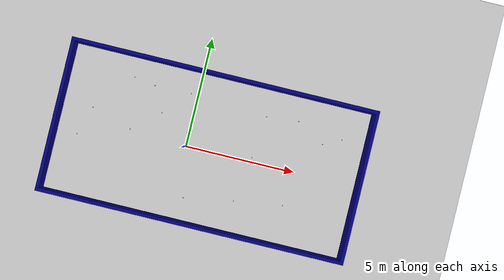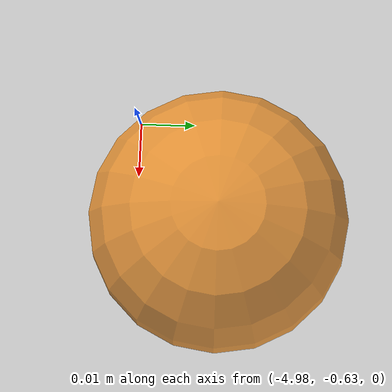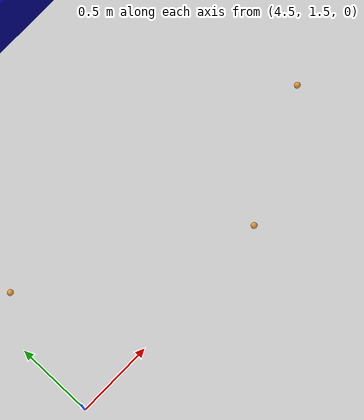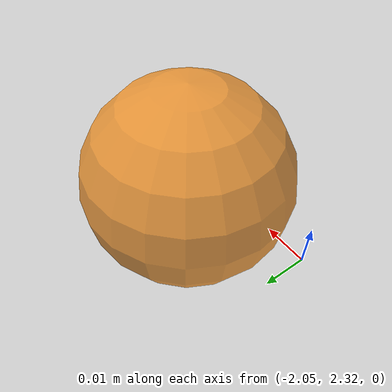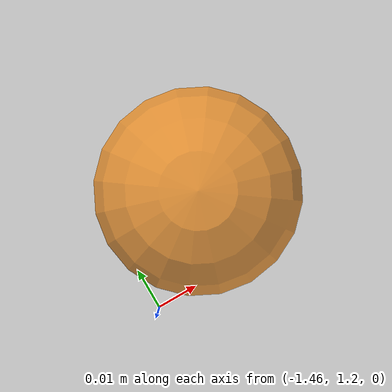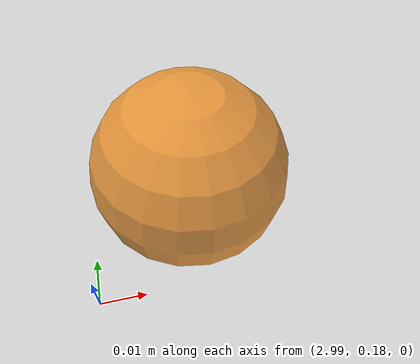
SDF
<sdf version="1.6">
 <world name="default">
  <model name="ground_plane">
   <static>1</static>
   <link name="link">
    <collision name="collision">
     <geometry><plane><normal>0 0 1</normal><size>100 100</size></plane></geometry>
     <surface><friction><ode><mu>100</mu><mu2>10</mu2></ode></friction></surface>
    </collision>
    <visual name="visual">
     <cast_shadows>0</cast_shadows>
     <geometry><plane><normal>0 0 1</normal><size>100 100</size></plane></geometry>
     <material>
      <script><uri>file://media/materials/scripts/gazebo.material</uri><name>Gazebo/Grey</name></script>
     </material>
    </visual>
   </link>
  </model>
  <gravity>0 0 -9.8</gravity>
  <magnetic_field>6e-06 2.3e-05 -4.2e-05</magnetic_field>
  <atmosphere type="adiabatic"/>
  <physics name="default_physics" default="0" type="ode">
   <max_step_size>0.001</max_step_size>
   <real_time_factor>1</real_time_factor>
   <real_time_update_rate>1000</real_time_update_rate>
  </physics>
  <scene><ambient>0.4 0.4 0.4 1</ambient><background>0.7 0.7 0.7 1</background><shadows>1</shadows></scene>
  <spherical_coordinates>
   <surface_model>EARTH_WGS84</surface_model>
   <latitude_deg>0</latitude_deg>
   <longitude_deg>0</longitude_deg>
   <elevation>0</elevation>
   <heading_deg>0</heading_deg>
  </spherical_coordinates>
  <model name="table_tennis_room_2">
   <pose>0.979802 0.03249 0 0 -0 0</pose>
   <link name="Wall_3">
    <collision name="Wall_3_Collision">
     <geometry><box><size>14 0.15 0.76</size></box></geometry>
     <pose>0 0 0.38 0 -0 0</pose>
    </collision>
    <visual name="Wall_3_Visual">
     <pose>0 0 0.38 0 -0 0</pose>
     <geometry><box><size>14 0.15 0.76</size></box></geometry>
     <material>
      <script><uri>file://media/materials/scripts/gazebo.material</uri><name>Gazebo/Grey</name></script>
      <ambient>0 0 0.498039 1</ambient>
     </material>
    </visual>
    <pose>0 -3.425 0 0 -0 0</pose>
   </link>
   <link name="Wall_4">
    <collision name="Wall_4_Collision">
     <geometry><box><size>7 0.15 0.76</size></box></geometry>
     <pose>0 0 0.38 0 -0 0</pose>
    </collision>
    <visual name="Wall_4_Visual">
     <pose>0 0 0.38 0 -0 0</pose>
     <geometry><box><size>7 0.15 0.76</size></box></geometry>
     <material>
      <script><uri>file://media/materials/scripts/gazebo.material</uri><name>Gazebo/Grey</name></script>
      <ambient>0 0 0.498039 1</ambient>
     </material>
    </visual>
    <pose>6.925 0 0 0 -0 1.5708</pose>
   </link>
   <link name="Wall_5">
    <collision name="Wall_5_Collision">
     <geometry><box><size>14 0.15 0.76</size></box></geometry>
     <pose>0 0 0.38 0 -0 0</pose>
    </collision>
    <visual name="Wall_5_Visual">
     <pose>0 0 0.38 0 -0 0</pose>
     <geometry><box><size>14 0.15 0.76</size></box></geometry>
     <material>
      <script><uri>file://media/materials/scripts/gazebo.material</uri><name>Gazebo/Grey</name></script>
      <ambient>0 0 0.498039 1</ambient>
     </material>
    </visual>
    <pose>0 3.425 0 0 -0 3.14159</pose>
   </link>
   <link name="Wall_6">
    <collision name="Wall_6_Collision">
     <geometry><box><size>7 0.15 0.76</size></box></geometry>
     <pose>0 0 0.38 0 -0 0</pose>
    </collision>
    <visual name="Wall_6_Visual">
     <pose>0 0 0.38 0 -0 0</pose>
     <geometry><box><size>7 0.15 0.76</size></box></geometry>
     <material>
      <script><uri>file://media/materials/scripts/gazebo.material</uri><name>Gazebo/Grey</name></script>
      <ambient>0 0 0.498039 1</ambient>
     </material>
    </visual>
    <pose>-6.925 0 0 0 0 -1.5708</pose>
   </link>
   <static>1</static>
  </model>
  <light name="main_light" type="directional">
   <pose>2.51103 2.03204 1 0 -0 0</pose>
   <diffuse>0.5 0.5 0.5 1</diffuse>
   <specular>0.1 0.1 0.1 1</specular>
   <direction>0.1 0.1 -0.9</direction>
   <attenuation>
    <range>20</range>
    <constant>0.5</constant>
    <linear>0.01</linear>
    <quadratic>0.001</quadratic>
   </attenuation>
  </light>
  <light name="sidelight_1" type="directional">
   <pose>2.54945 1.74337 1 0 -0 0</pose>
   <diffuse>0.5 0.5 0.5 1</diffuse>
   <specular>0.1 0.1 0.1 1</specular>
   <direction>0.1 0.1 -0.9</direction>
   <attenuation>
    <range>20</range>
    <constant>0.5</constant>
    <linear>0.01</linear>
    <quadratic>0.001</quadratic>
   </attenuation>
  </light>
  <light name="sidelight_2" type="directional">
   <pose>2.76871 0.675081 1 0 -0 0</pose>
   <diffuse>0.5 0.5 0.5 1</diffuse>
   <specular>0.1 0.1 0.1 1</specular>
   <direction>0.1 0.1 -0.9</direction>
   <attenuation>
    <range>20</range>
    <constant>0.5</constant>
    <linear>0.01</linear>
    <quadratic>0.001</quadratic>
   </attenuation>
  </light>
  <light name="sidelight_3" type="directional">
   <pose>2.93471 1.34637 1 0 -0 0</pose>
   <diffuse>0.5 0.5 0.5 1</diffuse>
   <specular>0.1 0.1 0.1 1</specular>
   <direction>0.1 0.1 -0.9</direction>
   <attenuation>
    <range>20</range>
    <constant>0.5</constant>
    <linear>0.01</linear>
    <quadratic>0.001</quadratic>
   </attenuation>
  </light>
  <light name="sidelight_4" type="directional">
   <pose>3.40089 1.34551 1 0 -0 0</pose>
   <diffuse>0.5 0.5 0.5 1</diffuse>
   <specular>0.1 0.1 0.1 1</specular>
   <direction>0.1 0.1 -0.9</direction>
   <attenuation>
    <range>20</range>
    <constant>0.5</constant>
    <linear>0.01</linear>
    <quadratic>0.001</quadratic>
   </attenuation>
  </light>
  <model name="table_tennis_28">
   <link name="link">
    <pose>0 0 0.02 0 -0 0</pose>
    <inertial>
     <mass>0.0027</mass>
     <inertia><ixx>0.00027</ixx><ixy>0</ixy><ixz>0</ixz><iyy>0.00027</iyy><iyz>0</iyz><izz>0.00027</izz></inertia>
    </inertial>
    <visual name="visual">
     <geometry><sphere><radius>0.02</radius></sphere></geometry>
     <material>
      <script><name>Gazebo/Orange</name><uri>file://media/materials/scripts/gazebo.material</uri></script>
      <ambient>1 0.44 0 1</ambient>
      <diffuse>1 0.44 0 1</diffuse>
      <specular>0 0 0 1</specular>
      <emissive>0 0 0 1</emissive>
      <shader type="vertex"><normal_map>__default__</normal_map></shader>
     </material>
     <cast_shadows>0</cast_shadows>
     <transparency>0.22</transparency>
    </visual>
    <collision name="collision">
     <geometry><sphere><radius>0.02</radius></sphere></geometry>
     <surface>
      <friction>
       <ode><mu>1</mu><mu2>1</mu2><fdir1>0 0 0</fdir1><slip1>0</slip1><slip2>0</slip2></ode>
       <torsional>
        <coefficient>1</coefficient>
        <patch_radius>0</patch_radius>
        <surface_radius>0</surface_radius>
        <use_patch_radius>1</use_patch_radius>
        <ode><slip>0</slip></ode>
       </torsional>
      </friction>
      <bounce><restitution_coefficient>0</restitution_coefficient><threshold>1e+06</threshold></bounce>
      <contact>
       <collide_without_contact>0</collide_without_contact>
       <collide_without_contact_bitmask>1</collide_without_contact_bitmask>
       <collide_bitmask>1</collide_bitmask>
       <ode>
        <soft_cfm>0</soft_cfm>
        <soft_erp>0.2</soft_erp>
        <kp>1e+13</kp>
        <kd>1</kd>
        <max_vel>0.01</max_vel>
        <min_depth>0</min_depth>
       </ode>
       <bullet>
        <split_impulse>1</split_impulse>
        <split_impulse_penetration_threshold>-0.01</split_impulse_penetration_threshold>
        <soft_cfm>0</soft_cfm>
        <soft_erp>0.2</soft_erp>
        <kp>1e+13</kp>
        <kd>1</kd>
       </bullet>
      </contact>
     </surface>
    </collision>
   </link>
   <static>0</static>
   <pose>5.98062 1.54014 4e-06 0.018571 -0.007017 -0.002142</pose>
  </model>
  <model name="table_tennis_32">
   <link name="link">
    <pose>0 0 0.02 0 -0 0</pose>
    <inertial>
     <mass>0.0027</mass>
     <inertia><ixx>0.00027</ixx><ixy>0</ixy><ixz>0</ixz><iyy>0.00027</iyy><iyz>0</iyz><izz>0.00027</izz></inertia>
    </inertial>
    <visual name="visual">
     <geometry><sphere><radius>0.02</radius></sphere></geometry>
     <material>
      <script><name>Gazebo/Orange</name><uri>file://media/materials/scripts/gazebo.material</uri></script>
      <ambient>1 0.44 0 1</ambient>
      <diffuse>1 0.44 0 1</diffuse>
      <specular>0 0 0 1</specular>
      <emissive>0 0 0 1</emissive>
      <shader type="vertex"><normal_map>__default__</normal_map></shader>
     </material>
     <cast_shadows>0</cast_shadows>
     <transparency>0.22</transparency>
    </visual>
    <collision name="collision">
     <geometry><sphere><radius>0.02</radius></sphere></geometry>
     <surface>
      <friction>
       <ode><mu>1</mu><mu2>1</mu2><fdir1>0 0 0</fdir1><slip1>0</slip1><slip2>0</slip2></ode>
       <torsional>
        <coefficient>1</coefficient>
        <patch_radius>0</patch_radius>
        <surface_radius>0</surface_radius>
        <use_patch_radius>1</use_patch_radius>
        <ode><slip>0</slip></ode>
       </torsional>
      </friction>
      <bounce><restitution_coefficient>0</restitution_coefficient><threshold>1e+06</threshold></bounce>
      <contact>
       <collide_without_contact>0</collide_without_contact>
       <collide_without_contact_bitmask>1</collide_without_contact_bitmask>
       <collide_bitmask>1</collide_bitmask>
       <ode>
        <soft_cfm>0</soft_cfm>
        <soft_erp>0.2</soft_erp>
        <kp>1e+13</kp>
        <kd>1</kd>
        <max_vel>0.01</max_vel>
        <min_depth>0</min_depth>
       </ode>
       <bullet>
        <split_impulse>1</split_impulse>
        <split_impulse_penetration_threshold>-0.01</split_impulse_penetration_threshold>
        <soft_cfm>0</soft_cfm>
        <soft_erp>0.2</soft_erp>
        <kp>1e+13</kp>
        <kd>1</kd>
       </bullet>
      </contact>
     </surface>
    </collision>
   </link>
   <static>0</static>
   <pose>4.86946 -1.58779 0 0 -0 0</pose>
  </model>
  <model name="table_tennis_35">
   <link name="link">
    <pose>0 0 0.02 0 -0 0</pose>
    <inertial>
     <mass>0.0027</mass>
     <inertia><ixx>0.00027</ixx><ixy>0</ixy><ixz>0</ixz><iyy>0.00027</iyy><iyz>0</iyz><izz>0.00027</izz></inertia>
    </inertial>
    <visual name="visual">
     <geometry><sphere><radius>0.02</radius></sphere></geometry>
     <material>
      <script><name>Gazebo/Orange</name><uri>file://media/materials/scripts/gazebo.material</uri></script>
      <ambient>1 0.44 0 1</ambient>
      <diffuse>1 0.44 0 1</diffuse>
      <specular>0 0 0 1</specular>
      <emissive>0 0 0 1</emissive>
      <shader type="vertex"><normal_map>__default__</normal_map></shader>
     </material>
     <cast_shadows>0</cast_shadows>
     <transparency>0.22</transparency>
    </visual>
    <collision name="collision">
     <geometry><sphere><radius>0.02</radius></sphere></geometry>
     <surface>
      <friction>
       <ode><mu>1</mu><mu2>1</mu2><fdir1>0 0 0</fdir1><slip1>0</slip1><slip2>0</slip2></ode>
       <torsional>
        <coefficient>1</coefficient>
        <patch_radius>0</patch_radius>
        <surface_radius>0</surface_radius>
        <use_patch_radius>1</use_patch_radius>
        <ode><slip>0</slip></ode>
       </torsional>
      </friction>
      <bounce><restitution_coefficient>0</restitution_coefficient><threshold>1e+06</threshold></bounce>
      <contact>
       <collide_without_contact>0</collide_without_contact>
       <collide_without_contact_bitmask>1</collide_without_contact_bitmask>
       <collide_bitmask>1</collide_bitmask>
       <ode>
        <soft_cfm>0</soft_cfm>
        <soft_erp>0.2</soft_erp>
        <kp>1e+13</kp>
        <kd>1</kd>
        <max_vel>0.01</max_vel>
        <min_depth>0</min_depth>
       </ode>
       <bullet>
        <split_impulse>1</split_impulse>
        <split_impulse_penetration_threshold>-0.01</split_impulse_penetration_threshold>
        <soft_cfm>0</soft_cfm>
        <soft_erp>0.2</soft_erp>
        <kp>1e+13</kp>
        <kd>1</kd>
       </bullet>
      </contact>
     </surface>
    </collision>
   </link>
   <static>0</static>
   <pose>-0.108036 0.630376 0 0 -0 0</pose>
  </model>
  <model name="table_tennis_36">
   <link name="link">
    <pose>0 0 0.02 0 -0 0</pose>
    <inertial>
     <mass>0.0027</mass>
     <inertia><ixx>0.00027</ixx><ixy>0</ixy><ixz>0</ixz><iyy>0.00027</iyy><iyz>0</iyz><izz>0.00027</izz></inertia>
    </inertial>
    <visual name="visual">
     <geometry><sphere><radius>0.02</radius></sphere></geometry>
     <material>
      <script><name>Gazebo/Orange</name><uri>file://media/materials/scripts/gazebo.material</uri></script>
      <ambient>1 0.44 0 1</ambient>
      <diffuse>1 0.44 0 1</diffuse>
      <specular>0 0 0 1</specular>
      <emissive>0 0 0 1</emissive>
      <shader type="vertex"><normal_map>__default__</normal_map></shader>
     </material>
     <cast_shadows>0</cast_shadows>
     <transparency>0.22</transparency>
    </visual>
    <collision name="collision">
     <geometry><sphere><radius>0.02</radius></sphere></geometry>
     <surface>
      <friction>
       <ode><mu>1</mu><mu2>1</mu2><fdir1>0 0 0</fdir1><slip1>0</slip1><slip2>0</slip2></ode>
       <torsional>
        <coefficient>1</coefficient>
        <patch_radius>0</patch_radius>
        <surface_radius>0</surface_radius>
        <use_patch_radius>1</use_patch_radius>
        <ode><slip>0</slip></ode>
       </torsional>
      </friction>
      <bounce><restitution_coefficient>0</restitution_coefficient><threshold>1e+06</threshold></bounce>
      <contact>
       <collide_without_contact>0</collide_without_contact>
       <collide_without_contact_bitmask>1</collide_without_contact_bitmask>
       <collide_bitmask>1</collide_bitmask>
       <ode>
        <soft_cfm>0</soft_cfm>
        <soft_erp>0.2</soft_erp>
        <kp>1e+13</kp>
        <kd>1</kd>
        <max_vel>0.01</max_vel>
        <min_depth>0</min_depth>
       </ode>
       <bullet>
        <split_impulse>1</split_impulse>
        <split_impulse_penetration_threshold>-0.01</split_impulse_penetration_threshold>
        <soft_cfm>0</soft_cfm>
        <soft_erp>0.2</soft_erp>
        <kp>1e+13</kp>
        <kd>1</kd>
       </bullet>
      </contact>
     </surface>
    </collision>
   </link>
   <static>0</static>
   <pose>-1.43818 1.21902 0 0 -0 0</pose>
  </model>
  <model name="table_tennis_38">
   <link name="link">
    <pose>0 0 0.02 0 -0 0</pose>
    <inertial>
     <mass>0.0027</mass>
     <inertia><ixx>0.00027</ixx><ixy>0</ixy><ixz>0</ixz><iyy>0.00027</iyy><iyz>0</iyz><izz>0.00027</izz></inertia>
    </inertial>
    <visual name="visual">
     <geometry><sphere><radius>0.02</radius></sphere></geometry>
     <material>
      <script><name>Gazebo/Orange</name><uri>file://media/materials/scripts/gazebo.material</uri></script>
      <ambient>1 0.44 0 1</ambient>
      <diffuse>1 0.44 0 1</diffuse>
      <specular>0 0 0 1</specular>
      <emissive>0 0 0 1</emissive>
      <shader type="vertex"><normal_map>__default__</normal_map></shader>
     </material>
     <cast_shadows>0</cast_shadows>
     <transparency>0.22</transparency>
    </visual>
    <collision name="collision">
     <geometry><sphere><radius>0.02</radius></sphere></geometry>
     <surface>
      <friction>
       <ode><mu>1</mu><mu2>1</mu2><fdir1>0 0 0</fdir1><slip1>0</slip1><slip2>0</slip2></ode>
       <torsional>
        <coefficient>1</coefficient>
        <patch_radius>0</patch_radius>
        <surface_radius>0</surface_radius>
        <use_patch_radius>1</use_patch_radius>
        <ode><slip>0</slip></ode>
       </torsional>
      </friction>
      <bounce><restitution_coefficient>0</restitution_coefficient><threshold>1e+06</threshold></bounce>
      <contact>
       <collide_without_contact>0</collide_without_contact>
       <collide_without_contact_bitmask>1</collide_without_contact_bitmask>
       <collide_bitmask>1</collide_bitmask>
       <ode>
        <soft_cfm>0</soft_cfm>
        <soft_erp>0.2</soft_erp>
        <kp>1e+13</kp>
        <kd>1</kd>
        <max_vel>0.01</max_vel>
        <min_depth>0</min_depth>
       </ode>
       <bullet>
        <split_impulse>1</split_impulse>
        <split_impulse_penetration_threshold>-0.01</split_impulse_penetration_threshold>
        <soft_cfm>0</soft_cfm>
        <soft_erp>0.2</soft_erp>
        <kp>1e+13</kp>
        <kd>1</kd>
       </bullet>
      </contact>
     </surface>
    </collision>
   </link>
   <static>0</static>
   <pose>3.21857 2.15483 0 0 -0 0</pose>
  </model>
  <model name="table_tennis_40">
   <link name="link">
    <pose>0 0 0.02 0 -0 0</pose>
    <inertial>
     <mass>0.0027</mass>
     <inertia><ixx>0.00027</ixx><ixy>0</ixy><ixz>0</ixz><iyy>0.00027</iyy><iyz>0</iyz><izz>0.00027</izz></inertia>
    </inertial>
    <visual name="visual">
     <geometry><sphere><radius>0.02</radius></sphere></geometry>
     <material>
      <script><name>Gazebo/Orange</name><uri>file://media/materials/scripts/gazebo.material</uri></script>
      <ambient>1 0.44 0 1</ambient>
      <diffuse>1 0.44 0 1</diffuse>
      <specular>0 0 0 1</specular>
      <emissive>0 0 0 1</emissive>
      <shader type="vertex"><normal_map>__default__</normal_map></shader>
     </material>
     <cast_shadows>0</cast_shadows>
     <transparency>0.22</transparency>
    </visual>
    <collision name="collision">
     <geometry><sphere><radius>0.02</radius></sphere></geometry>
     <surface>
      <friction>
       <ode><mu>1</mu><mu2>1</mu2><fdir1>0 0 0</fdir1><slip1>0</slip1><slip2>0</slip2></ode>
       <torsional>
        <coefficient>1</coefficient>
        <patch_radius>0</patch_radius>
        <surface_radius>0</surface_radius>
        <use_patch_radius>1</use_patch_radius>
        <ode><slip>0</slip></ode>
       </torsional>
      </friction>
      <bounce><restitution_coefficient>0</restitution_coefficient><threshold>1e+06</threshold></bounce>
      <contact>
       <collide_without_contact>0</collide_without_contact>
       <collide_without_contact_bitmask>1</collide_without_contact_bitmask>
       <collide_bitmask>1</collide_bitmask>
       <ode>
        <soft_cfm>0</soft_cfm>
        <soft_erp>0.2</soft_erp>
        <kp>1e+13</kp>
        <kd>1</kd>
        <max_vel>0.01</max_vel>
        <min_depth>0</min_depth>
       </ode>
       <bullet>
        <split_impulse>1</split_impulse>
        <split_impulse_penetration_threshold>-0.01</split_impulse_penetration_threshold>
        <soft_cfm>0</soft_cfm>
        <soft_erp>0.2</soft_erp>
        <kp>1e+13</kp>
        <kd>1</kd>
       </bullet>
      </contact>
     </surface>
    </collision>
   </link>
   <static>0</static>
   <pose>-0.342388 2.36522 0 0 -0 0</pose>
  </model>
  <model name="table_tennis_46">
   <link name="link">
    <pose>0 0 0.02 0 -0 0</pose>
    <inertial>
     <mass>0.0027</mass>
     <inertia><ixx>0.00027</ixx><ixy>0</ixy><ixz>0</ixz><iyy>0.00027</iyy><iyz>0</iyz><izz>0.00027</izz></inertia>
    </inertial>
    <visual name="visual">
     <geometry><sphere><radius>0.02</radius></sphere></geometry>
     <material>
      <script><name>Gazebo/Orange</name><uri>file://media/materials/scripts/gazebo.material</uri></script>
      <ambient>1 0.44 0 1</ambient>
      <diffuse>1 0.44 0 1</diffuse>
      <specular>0 0 0 1</specular>
      <emissive>0 0 0 1</emissive>
      <shader type="vertex"><normal_map>__default__</normal_map></shader>
     </material>
     <cast_shadows>0</cast_shadows>
     <transparency>0.22</transparency>
    </visual>
    <collision name="collision">
     <geometry><sphere><radius>0.02</radius></sphere></geometry>
     <surface>
      <friction>
       <ode><mu>1</mu><mu2>1</mu2><fdir1>0 0 0</fdir1><slip1>0</slip1><slip2>0</slip2></ode>
       <torsional>
        <coefficient>1</coefficient>
        <patch_radius>0</patch_radius>
        <surface_radius>0</surface_radius>
        <use_patch_radius>1</use_patch_radius>
        <ode><slip>0</slip></ode>
       </torsional>
      </friction>
      <bounce><restitution_coefficient>0</restitution_coefficient><threshold>1e+06</threshold></bounce>
      <contact>
       <collide_without_contact>0</collide_without_contact>
       <collide_without_contact_bitmask>1</collide_without_contact_bitmask>
       <collide_bitmask>1</collide_bitmask>
       <ode>
        <soft_cfm>0</soft_cfm>
        <soft_erp>0.2</soft_erp>
        <kp>1e+13</kp>
        <kd>1</kd>
        <max_vel>0.01</max_vel>
        <min_depth>0</min_depth>
       </ode>
       <bullet>
        <split_impulse>1</split_impulse>
        <split_impulse_penetration_threshold>-0.01</split_impulse_penetration_threshold>
        <soft_cfm>0</soft_cfm>
        <soft_erp>0.2</soft_erp>
        <kp>1e+13</kp>
        <kd>1</kd>
       </bullet>
      </contact>
     </surface>
    </collision>
   </link>
   <static>0</static>
   <pose>-2.65968 0.158343 0.03744 2.93949 -0.473176 -1.94056</pose>
  </model>
  <model name="table_tennis_49">
   <link name="link">
    <pose>0 0 0.02 0 -0 0</pose>
    <inertial>
     <mass>0.0027</mass>
     <inertia><ixx>0.00027</ixx><ixy>0</ixy><ixz>0</ixz><iyy>0.00027</iyy><iyz>0</iyz><izz>0.00027</izz></inertia>
    </inertial>
    <visual name="visual">
     <geometry><sphere><radius>0.02</radius></sphere></geometry>
     <material>
      <script><name>Gazebo/Orange</name><uri>file://media/materials/scripts/gazebo.material</uri></script>
      <ambient>1 0.44 0 1</ambient>
      <diffuse>1 0.44 0 1</diffuse>
      <specular>0 0 0 1</specular>
      <emissive>0 0 0 1</emissive>
      <shader type="vertex"><normal_map>__default__</normal_map></shader>
     </material>
     <cast_shadows>0</cast_shadows>
     <transparency>0.22</transparency>
    </visual>
    <collision name="collision">
     <geometry><sphere><radius>0.02</radius></sphere></geometry>
     <surface>
      <friction>
       <ode><mu>1</mu><mu2>1</mu2><fdir1>0 0 0</fdir1><slip1>0</slip1><slip2>0</slip2></ode>
       <torsional>
        <coefficient>1</coefficient>
        <patch_radius>0</patch_radius>
        <surface_radius>0</surface_radius>
        <use_patch_radius>1</use_patch_radius>
        <ode><slip>0</slip></ode>
       </torsional>
      </friction>
      <bounce><restitution_coefficient>0</restitution_coefficient><threshold>1e+06</threshold></bounce>
      <contact>
       <collide_without_contact>0</collide_without_contact>
       <collide_without_contact_bitmask>1</collide_without_contact_bitmask>
       <collide_bitmask>1</collide_bitmask>
       <ode>
        <soft_cfm>0</soft_cfm>
        <soft_erp>0.2</soft_erp>
        <kp>1e+13</kp>
        <kd>1</kd>
        <max_vel>0.01</max_vel>
        <min_depth>0</min_depth>
       </ode>
       <bullet>
        <split_impulse>1</split_impulse>
        <split_impulse_penetration_threshold>-0.01</split_impulse_penetration_threshold>
        <soft_cfm>0</soft_cfm>
        <soft_erp>0.2</soft_erp>
        <kp>1e+13</kp>
        <kd>1</kd>
       </bullet>
      </contact>
     </surface>
    </collision>
   </link>
   <static>0</static>
   <pose>-3.01578 2.4974 0 0 -0 0</pose>
  </model>
  <model name="table_tennis_50">
   <link name="link">
    <pose>0 0 0.02 0 -0 0</pose>
    <inertial>
     <mass>0.0027</mass>
     <inertia><ixx>0.00027</ixx><ixy>0</ixy><ixz>0</ixz><iyy>0.00027</iyy><iyz>0</iyz><izz>0.00027</izz></inertia>
    </inertial>
    <visual name="visual">
     <geometry><sphere><radius>0.02</radius></sphere></geometry>
     <material>
      <script><name>Gazebo/Orange</name><uri>file://media/materials/scripts/gazebo.material</uri></script>
      <ambient>1 0.44 0 1</ambient>
      <diffuse>1 0.44 0 1</diffuse>
      <specular>0 0 0 1</specular>
      <emissive>0 0 0 1</emissive>
      <shader type="vertex"><normal_map>__default__</normal_map></shader>
     </material>
     <cast_shadows>0</cast_shadows>
     <transparency>0.22</transparency>
    </visual>
    <collision name="collision">
     <geometry><sphere><radius>0.02</radius></sphere></geometry>
     <surface>
      <friction>
       <ode><mu>1</mu><mu2>1</mu2><fdir1>0 0 0</fdir1><slip1>0</slip1><slip2>0</slip2></ode>
       <torsional>
        <coefficient>1</coefficient>
        <patch_radius>0</patch_radius>
        <surface_radius>0</surface_radius>
        <use_patch_radius>1</use_patch_radius>
        <ode><slip>0</slip></ode>
       </torsional>
      </friction>
      <bounce><restitution_coefficient>0</restitution_coefficient><threshold>1e+06</threshold></bounce>
      <contact>
       <collide_without_contact>0</collide_without_contact>
       <collide_without_contact_bitmask>1</collide_without_contact_bitmask>
       <collide_bitmask>1</collide_bitmask>
       <ode>
        <soft_cfm>0</soft_cfm>
        <soft_erp>0.2</soft_erp>
        <kp>1e+13</kp>
        <kd>1</kd>
        <max_vel>0.01</max_vel>
        <min_depth>0</min_depth>
       </ode>
       <bullet>
        <split_impulse>1</split_impulse>
        <split_impulse_penetration_threshold>-0.01</split_impulse_penetration_threshold>
        <soft_cfm>0</soft_cfm>
        <soft_erp>0.2</soft_erp>
        <kp>1e+13</kp>
        <kd>1</kd>
       </bullet>
      </contact>
     </surface>
    </collision>
   </link>
   <static>0</static>
   <pose>-2.03222 2.33713 0 0 -0 0</pose>
  </model>
  <model name="table_tennis_55">
   <link name="link">
    <pose>0 0 0.02 0 -0 0</pose>
    <inertial>
     <mass>0.0027</mass>
     <inertia><ixx>0.00027</ixx><ixy>0</ixy><ixz>0</ixz><iyy>0.00027</iyy><iyz>0</iyz><izz>0.00027</izz></inertia>
    </inertial>
    <visual name="visual">
     <geometry><sphere><radius>0.02</radius></sphere></geometry>
     <material>
      <script><name>Gazebo/Orange</name><uri>file://media/materials/scripts/gazebo.material</uri></script>
      <ambient>1 0.44 0 1</ambient>
      <diffuse>1 0.44 0 1</diffuse>
      <specular>0 0 0 1</specular>
      <emissive>0 0 0 1</emissive>
      <shader type="vertex"><normal_map>__default__</normal_map></shader>
     </material>
     <cast_shadows>0</cast_shadows>
     <transparency>0.22</transparency>
    </visual>
    <collision name="collision">
     <geometry><sphere><radius>0.02</radius></sphere></geometry>
     <surface>
      <friction>
       <ode><mu>1</mu><mu2>1</mu2><fdir1>0 0 0</fdir1><slip1>0</slip1><slip2>0</slip2></ode>
       <torsional>
        <coefficient>1</coefficient>
        <patch_radius>0</patch_radius>
        <surface_radius>0</surface_radius>
        <use_patch_radius>1</use_patch_radius>
        <ode><slip>0</slip></ode>
       </torsional>
      </friction>
      <bounce><restitution_coefficient>0</restitution_coefficient><threshold>1e+06</threshold></bounce>
      <contact>
       <collide_without_contact>0</collide_without_contact>
       <collide_without_contact_bitmask>1</collide_without_contact_bitmask>
       <collide_bitmask>1</collide_bitmask>
       <ode>
        <soft_cfm>0</soft_cfm>
        <soft_erp>0.2</soft_erp>
        <kp>1e+13</kp>
        <kd>1</kd>
        <max_vel>0.01</max_vel>
        <min_depth>0</min_depth>
       </ode>
       <bullet>
        <split_impulse>1</split_impulse>
        <split_impulse_penetration_threshold>-0.01</split_impulse_penetration_threshold>
        <soft_cfm>0</soft_cfm>
        <soft_erp>0.2</soft_erp>
        <kp>1e+13</kp>
        <kd>1</kd>
       </bullet>
      </contact>
     </surface>
    </collision>
   </link>
   <static>0</static>
   <pose>-4.53414 0.712133 0 0 -0 0</pose>
  </model>
  <model name="table_tennis_57">
   <link name="link">
    <pose>0 0 0.02 0 -0 0</pose>
    <inertial>
     <mass>0.0027</mass>
     <inertia><ixx>0.00027</ixx><ixy>0</ixy><ixz>0</ixz><iyy>0.00027</iyy><iyz>0</iyz><izz>0.00027</izz></inertia>
    </inertial>
    <visual name="visual">
     <geometry><sphere><radius>0.02</radius></sphere></geometry>
     <material>
      <script><name>Gazebo/Orange</name><uri>file://media/materials/scripts/gazebo.material</uri></script>
      <ambient>1 0.44 0 1</ambient>
      <diffuse>1 0.44 0 1</diffuse>
      <specular>0 0 0 1</specular>
      <emissive>0 0 0 1</emissive>
      <shader type="vertex"><normal_map>__default__</normal_map></shader>
     </material>
     <cast_shadows>0</cast_shadows>
     <transparency>0.22</transparency>
    </visual>
    <collision name="collision">
     <geometry><sphere><radius>0.02</radius></sphere></geometry>
     <surface>
      <friction>
       <ode><mu>1</mu><mu2>1</mu2><fdir1>0 0 0</fdir1><slip1>0</slip1><slip2>0</slip2></ode>
       <torsional>
        <coefficient>1</coefficient>
        <patch_radius>0</patch_radius>
        <surface_radius>0</surface_radius>
        <use_patch_radius>1</use_patch_radius>
        <ode><slip>0</slip></ode>
       </torsional>
      </friction>
      <bounce><restitution_coefficient>0</restitution_coefficient><threshold>1e+06</threshold></bounce>
      <contact>
       <collide_without_contact>0</collide_without_contact>
       <collide_without_contact_bitmask>1</collide_without_contact_bitmask>
       <collide_bitmask>1</collide_bitmask>
       <ode>
        <soft_cfm>0</soft_cfm>
        <soft_erp>0.2</soft_erp>
        <kp>1e+13</kp>
        <kd>1</kd>
        <max_vel>0.01</max_vel>
        <min_depth>0</min_depth>
       </ode>
       <bullet>
        <split_impulse>1</split_impulse>
        <split_impulse_penetration_threshold>-0.01</split_impulse_penetration_threshold>
        <soft_cfm>0</soft_cfm>
        <soft_erp>0.2</soft_erp>
        <kp>1e+13</kp>
        <kd>1</kd>
       </bullet>
      </contact>
     </surface>
    </collision>
   </link>
   <static>0</static>
   <pose>0.406197 -2.30109 0 0 -0 0</pose>
  </model>
  <model name="table_tennis_60">
   <link name="link">
    <pose>0 0 0.02 0 -0 0</pose>
    <inertial>
     <mass>0.0027</mass>
     <inertia><ixx>0.00027</ixx><ixy>0</ixy><ixz>0</ixz><iyy>0.00027</iyy><iyz>0</iyz><izz>0.00027</izz></inertia>
    </inertial>
    <visual name="visual">
     <geometry><sphere><radius>0.02</radius></sphere></geometry>
     <material>
      <script><name>Gazebo/Orange</name><uri>file://media/materials/scripts/gazebo.material</uri></script>
      <ambient>1 0.44 0 1</ambient>
      <diffuse>1 0.44 0 1</diffuse>
      <specular>0 0 0 1</specular>
      <emissive>0 0 0 1</emissive>
      <shader type="vertex"><normal_map>__default__</normal_map></shader>
     </material>
     <cast_shadows>0</cast_shadows>
     <transparency>0.22</transparency>
    </visual>
    <collision name="collision">
     <geometry><sphere><radius>0.02</radius></sphere></geometry>
     <surface>
      <friction>
       <ode><mu>1</mu><mu2>1</mu2><fdir1>0 0 0</fdir1><slip1>0</slip1><slip2>0</slip2></ode>
       <torsional>
        <coefficient>1</coefficient>
        <patch_radius>0</patch_radius>
        <surface_radius>0</surface_radius>
        <use_patch_radius>1</use_patch_radius>
        <ode><slip>0</slip></ode>
       </torsional>
      </friction>
      <bounce><restitution_coefficient>0</restitution_coefficient><threshold>1e+06</threshold></bounce>
      <contact>
       <collide_without_contact>0</collide_without_contact>
       <collide_without_contact_bitmask>1</collide_without_contact_bitmask>
       <collide_bitmask>1</collide_bitmask>
       <ode>
        <soft_cfm>0</soft_cfm>
        <soft_erp>0.2</soft_erp>
        <kp>1e+13</kp>
        <kd>1</kd>
        <max_vel>0.01</max_vel>
        <min_depth>0</min_depth>
       </ode>
       <bullet>
        <split_impulse>1</split_impulse>
        <split_impulse_penetration_threshold>-0.01</split_impulse_penetration_threshold>
        <soft_cfm>0</soft_cfm>
        <soft_erp>0.2</soft_erp>
        <kp>1e+13</kp>
        <kd>1</kd>
       </bullet>
      </contact>
     </surface>
    </collision>
   </link>
   <static>0</static>
   <pose>-4.95929 -0.61479 0 0 -0 0</pose>
  </model>
  <model name="table_tennis_62">
   <link name="link">
    <pose>0 0 0.02 0 -0 0</pose>
    <inertial>
     <mass>0.0027</mass>
     <inertia><ixx>0.00027</ixx><ixy>0</ixy><ixz>0</ixz><iyy>0.00027</iyy><iyz>0</iyz><izz>0.00027</izz></inertia>
    </inertial>
    <visual name="visual">
     <geometry><sphere><radius>0.02</radius></sphere></geometry>
     <material>
      <script><name>Gazebo/Orange</name><uri>file://media/materials/scripts/gazebo.material</uri></script>
      <ambient>1 0.44 0 1</ambient>
      <diffuse>1 0.44 0 1</diffuse>
      <specular>0 0 0 1</specular>
      <emissive>0 0 0 1</emissive>
      <shader type="vertex"><normal_map>__default__</normal_map></shader>
     </material>
     <cast_shadows>0</cast_shadows>
     <transparency>0.22</transparency>
    </visual>
    <collision name="collision">
     <geometry><sphere><radius>0.02</radius></sphere></geometry>
     <surface>
      <friction>
       <ode><mu>1</mu><mu2>1</mu2><fdir1>0 0 0</fdir1><slip1>0</slip1><slip2>0</slip2></ode>
       <torsional>
        <coefficient>1</coefficient>
        <patch_radius>0</patch_radius>
        <surface_radius>0</surface_radius>
        <use_patch_radius>1</use_patch_radius>
        <ode><slip>0</slip></ode>
       </torsional>
      </friction>
      <bounce><restitution_coefficient>0</restitution_coefficient><threshold>1e+06</threshold></bounce>
      <contact>
       <collide_without_contact>0</collide_without_contact>
       <collide_without_contact_bitmask>1</collide_without_contact_bitmask>
       <collide_bitmask>1</collide_bitmask>
       <ode>
        <soft_cfm>0</soft_cfm>
        <soft_erp>0.2</soft_erp>
        <kp>1e+13</kp>
        <kd>1</kd>
        <max_vel>0.01</max_vel>
        <min_depth>0</min_depth>
       </ode>
       <bullet>
        <split_impulse>1</split_impulse>
        <split_impulse_penetration_threshold>-0.01</split_impulse_penetration_threshold>
        <soft_cfm>0</soft_cfm>
        <soft_erp>0.2</soft_erp>
        <kp>1e+13</kp>
        <kd>1</kd>
       </bullet>
      </contact>
     </surface>
    </collision>
   </link>
   <static>0</static>
   <pose>6.7851 1.94361 0 0 -0 0</pose>
  </model>
  <model name="table_tennis_63">
   <link name="link">
    <pose>0 0 0.02 0 -0 0</pose>
    <inertial>
     <mass>0.0027</mass>
     <inertia><ixx>0.00027</ixx><ixy>0</ixy><ixz>0</ixz><iyy>0.00027</iyy><iyz>0</iyz><izz>0.00027</izz></inertia>
    </inertial>
    <visual name="visual">
     <geometry><sphere><radius>0.02</radius></sphere></geometry>
     <material>
      <script><name>Gazebo/Orange</name><uri>file://media/materials/scripts/gazebo.material</uri></script>
      <ambient>1 0.44 0 1</ambient>
      <diffuse>1 0.44 0 1</diffuse>
      <specular>0 0 0 1</specular>
      <emissive>0 0 0 1</emissive>
      <shader type="vertex"><normal_map>__default__</normal_map></shader>
     </material>
     <cast_shadows>0</cast_shadows>
     <transparency>0.22</transparency>
    </visual>
    <collision name="collision">
     <geometry><sphere><radius>0.02</radius></sphere></geometry>
     <surface>
      <friction>
       <ode><mu>1</mu><mu2>1</mu2><fdir1>0 0 0</fdir1><slip1>0</slip1><slip2>0</slip2></ode>
       <torsional>
        <coefficient>1</coefficient>
        <patch_radius>0</patch_radius>
        <surface_radius>0</surface_radius>
        <use_patch_radius>1</use_patch_radius>
        <ode><slip>0</slip></ode>
       </torsional>
      </friction>
      <bounce><restitution_coefficient>0</restitution_coefficient><threshold>1e+06</threshold></bounce>
      <contact>
       <collide_without_contact>0</collide_without_contact>
       <collide_without_contact_bitmask>1</collide_without_contact_bitmask>
       <collide_bitmask>1</collide_bitmask>
       <ode>
        <soft_cfm>0</soft_cfm>
        <soft_erp>0.2</soft_erp>
        <kp>1e+13</kp>
        <kd>1</kd>
        <max_vel>0.01</max_vel>
        <min_depth>0</min_depth>
       </ode>
       <bullet>
        <split_impulse>1</split_impulse>
        <split_impulse_penetration_threshold>-0.01</split_impulse_penetration_threshold>
        <soft_cfm>0</soft_cfm>
        <soft_erp>0.2</soft_erp>
        <kp>1e+13</kp>
        <kd>1</kd>
       </bullet>
      </contact>
     </surface>
    </collision>
   </link>
   <static>0</static>
   <pose>4.6878 2.30212 0 0 -0 0</pose>
  </model>
  <model name="table_tennis_64">
   <link name="link">
    <pose>0 0 0.02 0 -0 0</pose>
    <inertial>
     <mass>0.0027</mass>
     <inertia><ixx>0.00027</ixx><ixy>0</ixy><ixz>0</ixz><iyy>0.00027</iyy><iyz>0</iyz><izz>0.00027</izz></inertia>
    </inertial>
    <visual name="visual">
     <geometry><sphere><radius>0.02</radius></sphere></geometry>
     <material>
      <script><name>Gazebo/Orange</name><uri>file://media/materials/scripts/gazebo.material</uri></script>
      <ambient>1 0.44 0 1</ambient>
      <diffuse>1 0.44 0 1</diffuse>
      <specular>0 0 0 1</specular>
      <emissive>0 0 0 1</emissive>
      <shader type="vertex"><normal_map>__default__</normal_map></shader>
     </material>
     <cast_shadows>0</cast_shadows>
     <transparency>0.22</transparency>
    </visual>
    <collision name="collision">
     <geometry><sphere><radius>0.02</radius></sphere></geometry>
     <surface>
      <friction>
       <ode><mu>1</mu><mu2>1</mu2><fdir1>0 0 0</fdir1><slip1>0</slip1><slip2>0</slip2></ode>
       <torsional>
        <coefficient>1</coefficient>
        <patch_radius>0</patch_radius>
        <surface_radius>0</surface_radius>
        <use_patch_radius>1</use_patch_radius>
        <ode><slip>0</slip></ode>
       </torsional>
      </friction>
      <bounce><restitution_coefficient>0</restitution_coefficient><threshold>1e+06</threshold></bounce>
      <contact>
       <collide_without_contact>0</collide_without_contact>
       <collide_without_contact_bitmask>1</collide_without_contact_bitmask>
       <collide_bitmask>1</collide_bitmask>
       <ode>
        <soft_cfm>0</soft_cfm>
        <soft_erp>0.2</soft_erp>
        <kp>1e+13</kp>
        <kd>1</kd>
        <max_vel>0.01</max_vel>
        <min_depth>0</min_depth>
       </ode>
       <bullet>
        <split_impulse>1</split_impulse>
        <split_impulse_penetration_threshold>-0.01</split_impulse_penetration_threshold>
        <soft_cfm>0</soft_cfm>
        <soft_erp>0.2</soft_erp>
        <kp>1e+13</kp>
        <kd>1</kd>
       </bullet>
      </contact>
     </surface>
    </collision>
   </link>
   <static>0</static>
   <pose>2.66404 -1.91088 0 0 -0 0</pose>
  </model>
  <model name="table_tennis_1">
   <link name="link">
    <pose>0 0 0.02 0 -0 0</pose>
    <inertial>
     <mass>0.0027</mass>
     <inertia><ixx>0.00027</ixx><ixy>0</ixy><ixz>0</ixz><iyy>0.00027</iyy><iyz>0</iyz><izz>0.00027</izz></inertia>
    </inertial>
    <visual name="visual">
     <geometry><sphere><radius>0.02</radius></sphere></geometry>
     <material>
      <script><name>Gazebo/Orange</name><uri>file://media/materials/scripts/gazebo.material</uri></script>
      <ambient>1 0.44 0 1</ambient>
      <diffuse>1 0.44 0 1</diffuse>
      <specular>0 0 0 1</specular>
      <emissive>0 0 0 1</emissive>
      <shader type="vertex"><normal_map>__default__</normal_map></shader>
     </material>
     <cast_shadows>0</cast_shadows>
     <transparency>0.22</transparency>
    </visual>
    <collision name="collision">
     <geometry><sphere><radius>0.02</radius></sphere></geometry>
     <surface>
      <friction>
       <ode><mu>1</mu><mu2>1</mu2><fdir1>0 0 0</fdir1><slip1>0</slip1><slip2>0</slip2></ode>
       <torsional>
        <coefficient>1</coefficient>
        <patch_radius>0</patch_radius>
        <surface_radius>0</surface_radius>
        <use_patch_radius>1</use_patch_radius>
        <ode><slip>0</slip></ode>
       </torsional>
      </friction>
      <bounce><restitution_coefficient>0</restitution_coefficient><threshold>1e+06</threshold></bounce>
      <contact>
       <collide_without_contact>0</collide_without_contact>
       <collide_without_contact_bitmask>1</collide_without_contact_bitmask>
       <collide_bitmask>1</collide_bitmask>
       <ode>
        <soft_cfm>0</soft_cfm>
        <soft_erp>0.2</soft_erp>
        <kp>1e+13</kp>
        <kd>1</kd>
        <max_vel>0.01</max_vel>
        <min_depth>0</min_depth>
       </ode>
       <bullet>
        <split_impulse>1</split_impulse>
        <split_impulse_penetration_threshold>-0.01</split_impulse_penetration_threshold>
        <soft_cfm>0</soft_cfm>
        <soft_erp>0.2</soft_erp>
        <kp>1e+13</kp>
        <kd>1</kd>
       </bullet>
      </contact>
     </surface>
    </collision>
   </link>
   <static>0</static>
   <pose>3.01262 0.196435 0 0 -0 0</pose>
  </model>
 </world>
</sdf>
